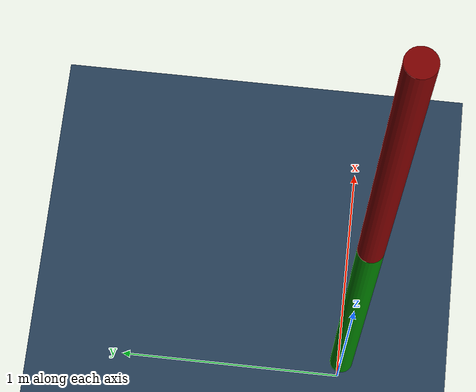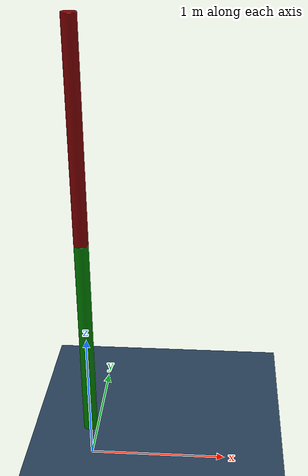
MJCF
<?xml version="1.0"?>
<mujoco model="simple_acrobot">
  <option integrator="RK4"/>
  <visual>
    <map force="0.1" zfar="30"/>
    <rgba haze="0.15 0.25 0.35 1"/>
    <global offwidth="2560" offheight="1440" elevation="-20" azimuth="120"/>
  </visual>
  <asset>
    <texture name="grid" type="2d" builtin="checker" rgb1=".1 .2 .3" rgb2=".2 .3 .4" width="300" height="300"/>
    <material name="grid" texture="grid" texrepeat="8 8" reflectance=".2"/>
  </asset>
  <worldbody>
    <light diffuse=".5 .5 .5" dir="0 -.15 -1" directional="true" pos="0 0 3"/>
    <camera name="closeup" pos="4.5 6 8" xyaxes="-0.804 0.594 -0.000 -0.288 -0.389 0.875"/>
    <geom size="10.0 10.0 .01" type="plane" material="grid"/>
    <body name="upper_link" pos="0 0 2.5">
      <joint axis="0 1 0" pos="0 0 0.75" name="shoulder" type="hinge"/>
      <geom name="upper_link" rgba="0.5 0 0 1" size="0.05 0.75" type="cylinder"/>
      <!-- I1, I2 = 1/12 * m1 * l1**2, 1/12 * m2 * l2**2  # moments of inertia for uniform rods -->
      <inertial mass="1" pos="0 0 0" diaginertia="0.1 0.1 0.01"/>
      <body name="lower_link" pos="0 0 -1.5">
        <joint axis="0 1 0" name="elbow" pos="0 0 0.75" type="hinge"/>
        <inertial mass="1" pos="0 0 0" diaginertia="0.1 0.1 0.01"/>
        <geom name="lower_link" rgba="0 0.5 0 1" size="0.05 0.75" type="cylinder"/>
      </body>
    </body>
  </worldbody>
  <actuator>
    <motor name="elbow" joint="elbow"/>
  </actuator>
  <keyframe>
    <key name="upright" qpos="3.14 0" qvel="0 0"/>
  </keyframe>
</mujoco>
